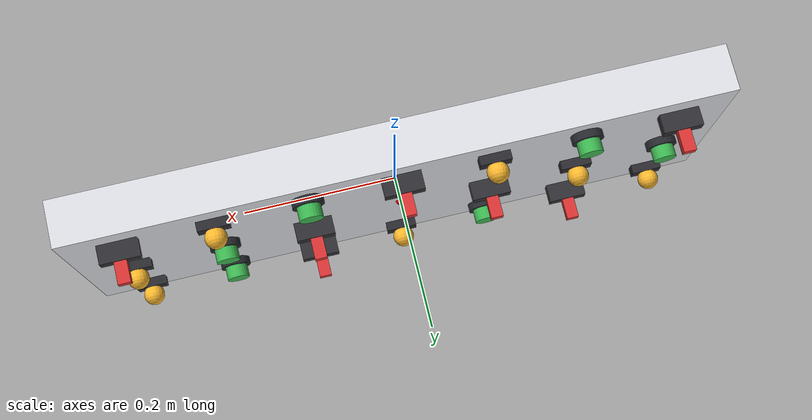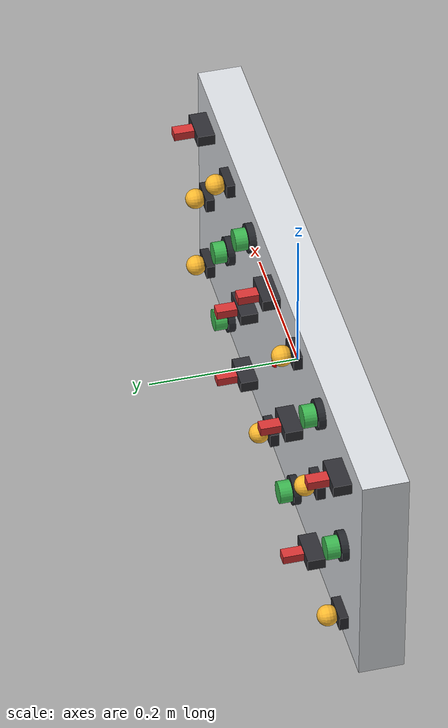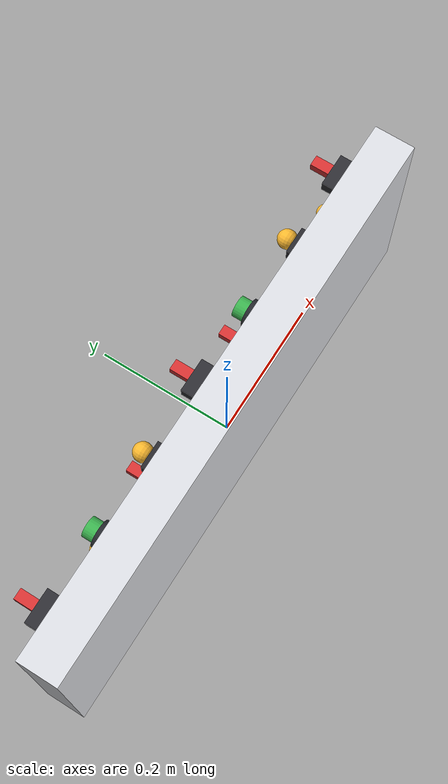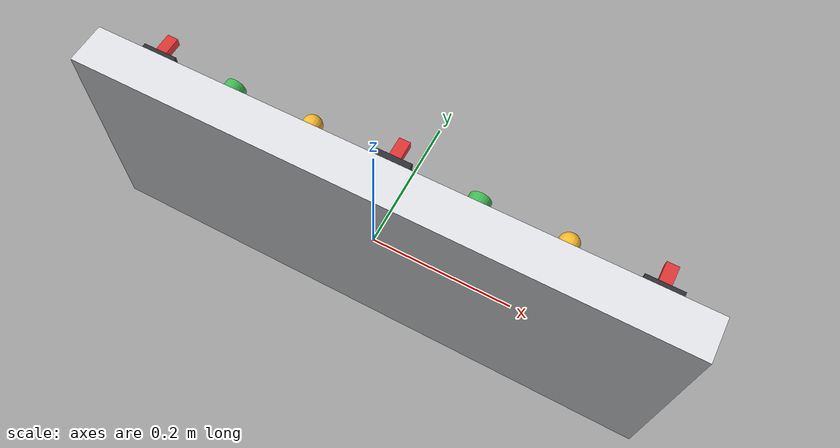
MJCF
<?xml version='1.0' encoding='utf-8'?>
<mujoco model="demo_panel_base">
  <asset>
    <material name="red_switch_material" rgba="0.85 0.20 0.20 1" />
    <material name="switch_base_material" rgba="0.18 0.18 0.20 1" />
    <material name="amber_lamp_shell" rgba="0.16 0.16 0.18 1" />
    <material name="amber_lamp_glow" rgba="0.98 0.72 0.18 0.95" />
  </asset>
  <default>
    <default class="amber_lamp_geom">
      <geom contype="1" conaffinity="1" />
    </default>
  </default>
  <worldbody>
    <body name="panel_mount" pos="0 0 0">
      <geom name="panel_backplate" type="box" pos="0 0 0" size="0.420 0.030 0.160" rgba="0.86 0.87 0.89 1" contype="1" conaffinity="1" />
      <site name="panel_origin" pos="0 0.030 0" size="0.006" rgba="1 0 0 1" />
      <body name="panel_slot_r0_c0" pos="-0.3498 0.03 0.12" quat="0.7071068 -0.7071068 0 0">
        <body name="red_switch_r0_c0">
          <geom name="red_switch_base__r0_c0" type="box" pos="0 0 0.012" size="0.025 0.008 0.012" material="switch_base_material" />
          <geom name="red_switch_toggle__r0_c0" type="box" pos="0 0 0.032" size="0.008 0.006 0.020" material="red_switch_material" />
        </body>
      </body>
      <body name="panel_slot_r0_c1" pos="-0.2332 0.03 0.12" quat="0.7071068 -0.7071068 0 0">
        <body name="green_knob_r0_c1">
          <geom name="green_knob_base__r0_c1" type="cylinder" pos="0 0 0.005" size="0.020 0.005" rgba="0.15 0.16 0.18 1" />
          <geom name="green_knob_cap__r0_c1" type="cylinder" pos="0 0 0.016" size="0.015 0.011" rgba="0.24 0.72 0.32 1" />
          <site name="green_knob_tip__r0_c1" pos="0 0.012 0.016" size="0.002" rgba="1 1 1 1" />
        </body>
      </body>
      <body name="panel_slot_r0_c2" pos="-0.1166 0.03 0.12" quat="0.7071068 -0.7071068 0 0">
        <body name="amber_lamp_r0_c2">
          <geom name="amber_lamp_base__r0_c2" class="amber_lamp_geom" type="box" pos="0 0 0.006" size="0.020 0.010 0.006" material="amber_lamp_shell" />
          <geom name="amber_lamp_cover__r0_c2" class="amber_lamp_geom" type="sphere" pos="0 0 0.022" size="0.014" material="amber_lamp_glow" />
        </body>
      </body>
      <body name="panel_slot_r0_c3" pos="0 0.03 0.125" quat="0.7071068 -0.7071068 0 0">
        <body name="red_switch_r0_c3">
          <geom name="red_switch_base__r0_c3" type="box" pos="0 0 0.012" size="0.025 0.008 0.012" material="switch_base_material" />
          <geom name="red_switch_toggle__r0_c3" type="box" pos="0 0 0.032" size="0.008 0.006 0.020" material="red_switch_material" />
        </body>
      </body>
      <body name="panel_slot_r0_c4" pos="0.1166 0.03 0.12" quat="0.7071068 -0.7071068 0 0">
        <body name="green_knob_r0_c4">
          <geom name="green_knob_base__r0_c4" type="cylinder" pos="0 0 0.005" size="0.020 0.005" rgba="0.15 0.16 0.18 1" />
          <geom name="green_knob_cap__r0_c4" type="cylinder" pos="0 0 0.016" size="0.015 0.011" rgba="0.24 0.72 0.32 1" />
          <site name="green_knob_tip__r0_c4" pos="0 0.012 0.016" size="0.002" rgba="1 1 1 1" />
        </body>
      </body>
      <body name="panel_slot_r0_c5" pos="0.2332 0.03 0.12" quat="0.7071068 -0.7071068 0 0">
        <body name="amber_lamp_r0_c5">
          <geom name="amber_lamp_base__r0_c5" class="amber_lamp_geom" type="box" pos="0 0 0.006" size="0.020 0.010 0.006" material="amber_lamp_shell" />
          <geom name="amber_lamp_cover__r0_c5" class="amber_lamp_geom" type="sphere" pos="0 0 0.022" size="0.014" material="amber_lamp_glow" />
        </body>
      </body>
      <body name="panel_slot_r0_c6" pos="0.3498 0.03 0.12" quat="0.7071068 -0.7071068 0 0">
        <body name="red_switch_r0_c6">
          <geom name="red_switch_base__r0_c6" type="box" pos="0 0 0.012" size="0.025 0.008 0.012" material="switch_base_material" />
          <geom name="red_switch_toggle__r0_c6" type="box" pos="0 0 0.032" size="0.008 0.006 0.020" material="red_switch_material" />
        </body>
      </body>
      <body name="panel_slot_r1_c0" pos="-0.3498 0.03 0" quat="0.7071068 -0.7071068 0 0">
        <body name="green_knob_r1_c0">
          <geom name="green_knob_base__r1_c0" type="cylinder" pos="0 0 0.005" size="0.020 0.005" rgba="0.15 0.16 0.18 1" />
          <geom name="green_knob_cap__r1_c0" type="cylinder" pos="0 0 0.016" size="0.015 0.011" rgba="0.24 0.72 0.32 1" />
          <site name="green_knob_tip__r1_c0" pos="0 0.012 0.016" size="0.002" rgba="1 1 1 1" />
        </body>
      </body>
      <body name="panel_slot_r1_c1" pos="-0.2332 0.03 0" quat="0.7071068 -0.7071068 0 0">
        <body name="amber_lamp_r1_c1">
          <geom name="amber_lamp_base__r1_c1" class="amber_lamp_geom" type="box" pos="0 0 0.006" size="0.020 0.010 0.006" material="amber_lamp_shell" />
          <geom name="amber_lamp_cover__r1_c1" class="amber_lamp_geom" type="sphere" pos="0 0 0.022" size="0.014" material="amber_lamp_glow" />
        </body>
      </body>
      <body name="panel_slot_r1_c2" pos="-0.1166 0.03 0" quat="0.7071068 -0.7071068 0 0">
        <body name="red_switch_r1_c2">
          <geom name="red_switch_base__r1_c2" type="box" pos="0 0 0.012" size="0.025 0.008 0.012" material="switch_base_material" />
          <geom name="red_switch_toggle__r1_c2" type="box" pos="0 0 0.032" size="0.008 0.006 0.020" material="red_switch_material" />
        </body>
      </body>
      <body name="panel_slot_r1_c4" pos="0.1166 0.03 0" quat="0.7071068 -0.7071068 0 0">
        <body name="red_switch_r1_c4">
          <geom name="red_switch_base__r1_c4" type="box" pos="0 0 0.012" size="0.025 0.008 0.012" material="switch_base_material" />
          <geom name="red_switch_toggle__r1_c4" type="box" pos="0 0 0.032" size="0.008 0.006 0.020" material="red_switch_material" />
        </body>
      </body>
      <body name="panel_slot_r1_c5" pos="0.2332 0.03 0" quat="0.7071068 -0.7071068 0 0">
        <body name="green_knob_r1_c5">
          <geom name="green_knob_base__r1_c5" type="cylinder" pos="0 0 0.005" size="0.020 0.005" rgba="0.15 0.16 0.18 1" />
          <geom name="green_knob_cap__r1_c5" type="cylinder" pos="0 0 0.016" size="0.015 0.011" rgba="0.24 0.72 0.32 1" />
          <site name="green_knob_tip__r1_c5" pos="0 0.012 0.016" size="0.002" rgba="1 1 1 1" />
        </body>
      </body>
      <body name="panel_slot_r1_c6" pos="0.3498 0.03 0" quat="0.7071068 -0.7071068 0 0">
        <body name="amber_lamp_r1_c6">
          <geom name="amber_lamp_base__r1_c6" class="amber_lamp_geom" type="box" pos="0 0 0.006" size="0.020 0.010 0.006" material="amber_lamp_shell" />
          <geom name="amber_lamp_cover__r1_c6" class="amber_lamp_geom" type="sphere" pos="0 0 0.022" size="0.014" material="amber_lamp_glow" />
        </body>
      </body>
      <body name="panel_slot_r2_c0" pos="-0.3498 0.03 -0.12" quat="0.7071068 -0.7071068 0 0">
        <body name="amber_lamp_r2_c0">
          <geom name="amber_lamp_base__r2_c0" class="amber_lamp_geom" type="box" pos="0 0 0.006" size="0.020 0.010 0.006" material="amber_lamp_shell" />
          <geom name="amber_lamp_cover__r2_c0" class="amber_lamp_geom" type="sphere" pos="0 0 0.022" size="0.014" material="amber_lamp_glow" />
        </body>
      </body>
      <body name="panel_slot_r2_c1" pos="-0.2332 0.03 -0.12" quat="0.7071068 -0.7071068 0 0">
        <body name="red_switch_r2_c1">
          <geom name="red_switch_base__r2_c1" type="box" pos="0 0 0.012" size="0.025 0.008 0.012" material="switch_base_material" />
          <geom name="red_switch_toggle__r2_c1" type="box" pos="0 0 0.032" size="0.008 0.006 0.020" material="red_switch_material" />
        </body>
      </body>
      <body name="panel_slot_r2_c2" pos="-0.1166 0.03 -0.12" quat="0.7071068 -0.7071068 0 0">
        <body name="green_knob_r2_c2">
          <geom name="green_knob_base__r2_c2" type="cylinder" pos="0 0 0.005" size="0.020 0.005" rgba="0.15 0.16 0.18 1" />
          <geom name="green_knob_cap__r2_c2" type="cylinder" pos="0 0 0.016" size="0.015 0.011" rgba="0.24 0.72 0.32 1" />
          <site name="green_knob_tip__r2_c2" pos="0 0.012 0.016" size="0.002" rgba="1 1 1 1" />
        </body>
      </body>
      <body name="panel_slot_r2_c3" pos="0 0.03 -0.12" quat="0.7071068 -0.7071068 0 0">
        <body name="amber_lamp_r2_c3">
          <geom name="amber_lamp_base__r2_c3" class="amber_lamp_geom" type="box" pos="0 0 0.006" size="0.020 0.010 0.006" material="amber_lamp_shell" />
          <geom name="amber_lamp_cover__r2_c3" class="amber_lamp_geom" type="sphere" pos="0 0 0.022" size="0.014" material="amber_lamp_glow" />
        </body>
      </body>
      <body name="panel_slot_r2_c4" pos="0.1166 0.03 -0.12" quat="0.7071068 -0.7071068 0 0">
        <body name="red_switch_r2_c4">
          <geom name="red_switch_base__r2_c4" type="box" pos="0 0 0.012" size="0.025 0.008 0.012" material="switch_base_material" />
          <geom name="red_switch_toggle__r2_c4" type="box" pos="0 0 0.032" size="0.008 0.006 0.020" material="red_switch_material" />
        </body>
      </body>
      <body name="panel_slot_r2_c5" pos="0.2332 0.03 -0.12" quat="0.7071068 -0.7071068 0 0">
        <body name="green_knob_r2_c5">
          <geom name="green_knob_base__r2_c5" type="cylinder" pos="0 0 0.005" size="0.020 0.005" rgba="0.15 0.16 0.18 1" />
          <geom name="green_knob_cap__r2_c5" type="cylinder" pos="0 0 0.016" size="0.015 0.011" rgba="0.24 0.72 0.32 1" />
          <site name="green_knob_tip__r2_c5" pos="0 0.012 0.016" size="0.002" rgba="1 1 1 1" />
        </body>
      </body>
      <body name="panel_slot_r2_c6" pos="0.3498 0.03 -0.12" quat="0.7071068 -0.7071068 0 0">
        <body name="amber_lamp_r2_c6">
          <geom name="amber_lamp_base__r2_c6" class="amber_lamp_geom" type="box" pos="0 0 0.006" size="0.020 0.010 0.006" material="amber_lamp_shell" />
          <geom name="amber_lamp_cover__r2_c6" class="amber_lamp_geom" type="sphere" pos="0 0 0.022" size="0.014" material="amber_lamp_glow" />
        </body>
      </body>
    </body>
  </worldbody>
</mujoco>
